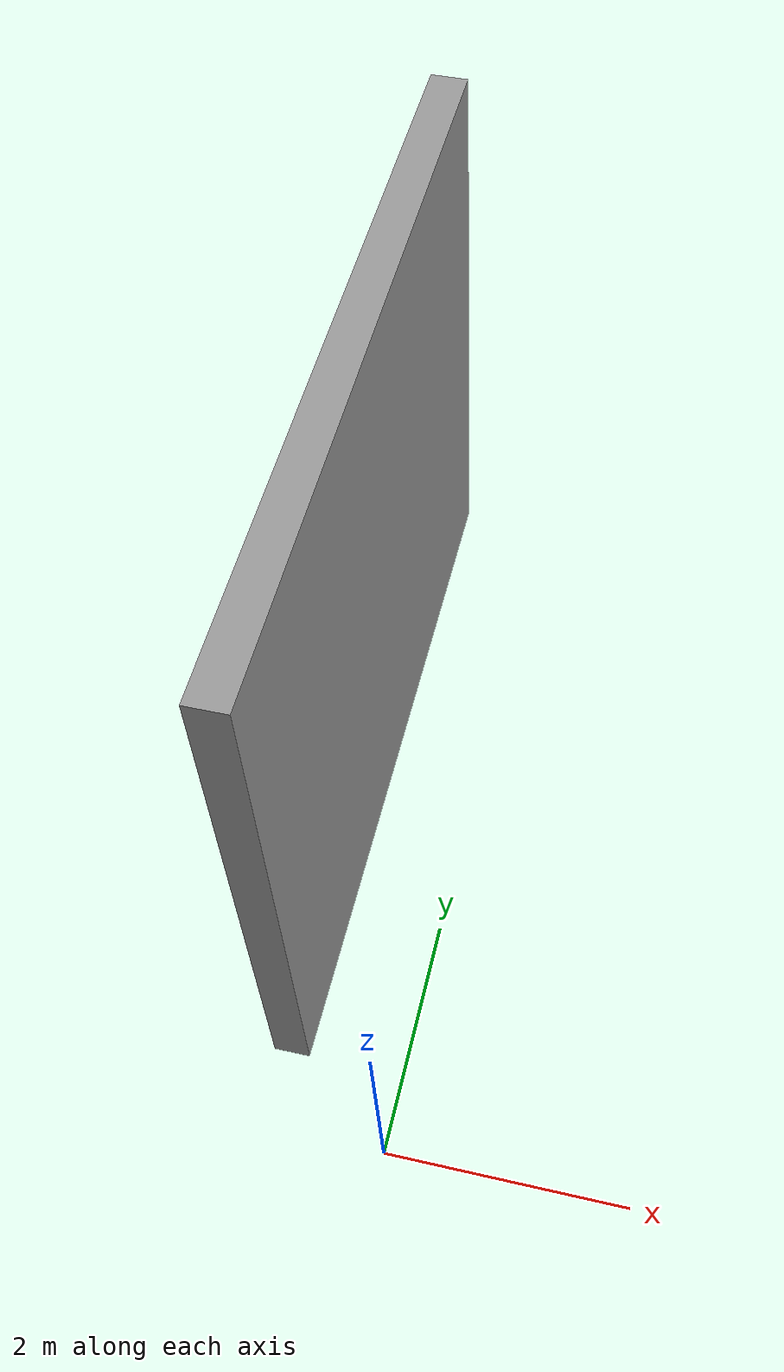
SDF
<?xml version='1.0'?>
<sdf version='1.7'>
  <model name='MAP'>
    <pose>-0.554 3.37 0 0 -0 0</pose>
    <link name='Wall_20'>
      <collision name='Wall_20_Collision'>
        <geometry>
          <box>
            <size>6.096 0.3 5.2</size>
          </box>
        </geometry>
        <pose>0 0 2.6 0 -0 0</pose>
      </collision>
      <visual name='Wall_20_Visual'>
        <pose>0 0 2.6 0 -0 0</pose>
        <geometry>
          <box>
            <size>6.096 0.3 5.2</size>
          </box>
        </geometry>
        <material>
          <script>
            <uri>file://media/materials/scripts/gazebo.material</uri>
            <name>Gazebo/Grey</name>
          </script>
          <ambient>1 1 1 1</ambient>
        </material>
        <meta>
          <layer>0</layer>
        </meta>
      </visual>
      <pose>-0.404 0.322 0 0 -0 1.5708</pose>
    </link>
    <static>1</static>
  </model>
</sdf>
